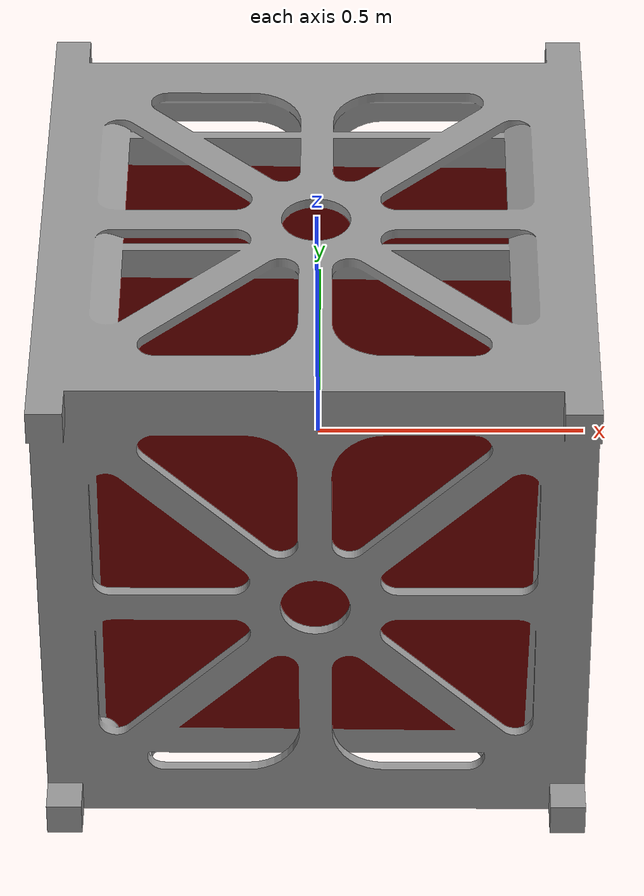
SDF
<?xml version="1.0" ?>
<sdf version="1.5">
  <model name="cubesat">

    <link name="link">
      <visual name="visual">
        <geometry>
          <mesh>
            <uri>model://cubesat/meshes/cubesat.dae</uri>
          </mesh>
        </geometry>
       </visual>
    </link>

  </model>
</sdf>
